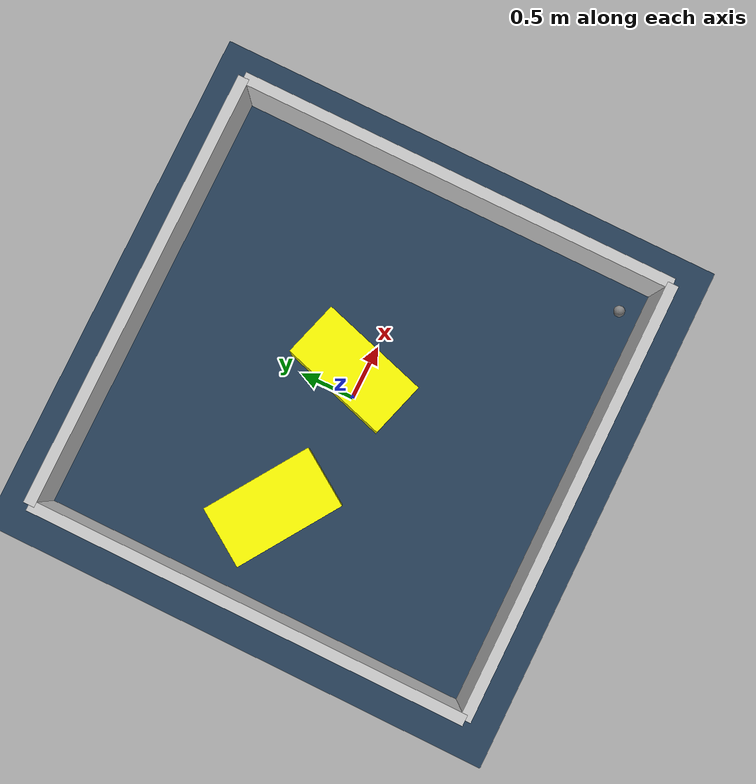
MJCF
<?xml version="1.0" ?>
<mujoco model="generated_environment">
  <option timestep="0.01" integrator="RK4" cone="elliptic"/>
  <default>
    <geom density="1"/>
  </default>
  <asset>
    <texture builtin="gradient" height="3072" rgb1="0.3 0.5 0.7" rgb2="0 0 0" type="skybox" width="512"/>
    <texture builtin="checker" height="300" mark="edge" markrgb="0.8 0.8 0.8" name="groundplane" rgb1="0.2 0.3 0.4" rgb2="0.1 0.2 0.3" type="2d" width="300"/>
    <material name="groundplane" reflectance="0.2" texrepeat="5 5" texture="groundplane" texuniform="true"/>
    <material name="robot" rgba="0.0 1.0 0.0 1"/>
  </asset>
  <worldbody>
    <light dir="0 0 -1" directional="true" pos="0 0 1.5"/>
    <geom condim="4" friction="1.0 0.005 0.001" material="groundplane" name="floor" size="0 0 0.05" type="plane"/>
    <body name="walls">
      <geom name="wall_1" condim="4" pos="-2.0 0.0 0.3" rgba="0.800000011920929 0.800000011920929 0.800000011920929 1.0" size="0.05 2.0 0.3" type="box"/>
      <geom name="wall_2" condim="4" pos="2.0 0.0 0.3" rgba="0.800000011920929 0.800000011920929 0.800000011920929 1.0" size="0.05 2.0 0.3" type="box"/>
      <geom name="wall_3" condim="4" pos="0.0 -2.0 0.3" rgba="0.800000011920929 0.800000011920929 0.800000011920929 1.0" size="2.0 0.05 0.3" type="box"/>
      <geom name="wall_4" condim="4" pos="0.0 2.0 0.3" rgba="0.800000011920929 0.800000011920929 0.800000011920929 1.0" size="2.0 0.05 0.3" type="box"/>
    </body>
    <body name="robot">
      <joint name="joint_x" type="slide" pos="0 0 0" axis="1 0 0"/>
      <joint name="joint_y" type="slide" pos="0 0 0" axis="0 1 0"/>
      <geom name="robot" type="sphere" pos="1.6800464367872272 -1.7462124303580762 0.2" size="0.05" mass="5." friction="1.0 0.005 0.0001" condim="4"/>
      <site name="sensor_ball"/>
    </body>
    <body name="obstacle_1_movable">
      <geom name="obstacle_1_movable" condim="4" pos="0.2047185883115623 0.087220339769152 0.2" euler="0 0 252.9959367322683" friction="1.0 0.005 0.001" rgba="1 1 0 1" size="0.5065185250308707 0.25972676554214613 0.2" type="box" mass="0.1"/>
      <joint type="free"/>
    </body>
    <body name="obstacle_2_movable">
      <geom name="obstacle_2_movable" condim="4" pos="-1.143613135034799 0.18936060113179876 0.2" euler="0 0 236.30235632204605" friction="1.0 0.005 0.001" rgba="1 1 0 1" size="0.28465689001167294 0.5098550332446019 0.2" type="box" mass="0.1"/>
      <joint type="free"/>
    </body>
  </worldbody>
  <actuator>
    <motor name="actuator_x" joint="joint_x" gear="1" ctrlrange="-1 1"/>
    <motor name="actuator_y" joint="joint_y" gear="1" ctrlrange="-1 1"/>
  </actuator>
</mujoco>
